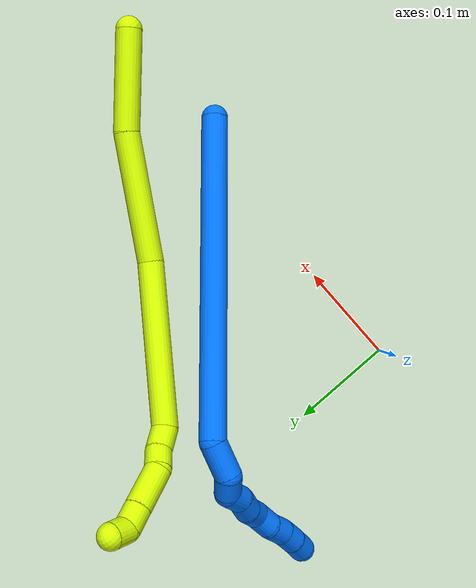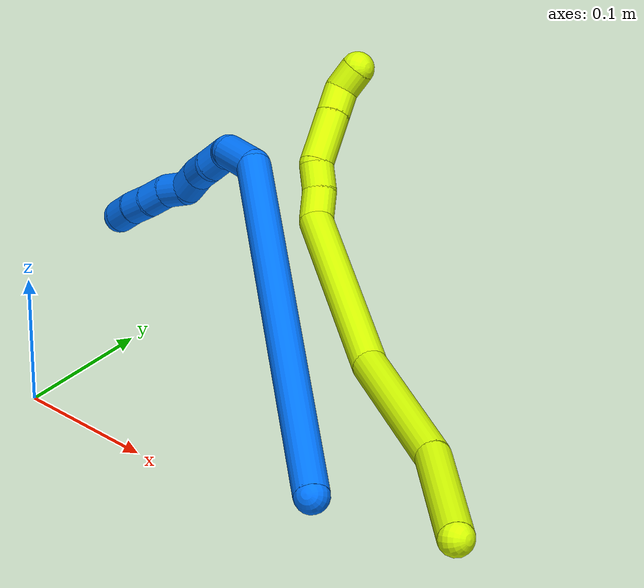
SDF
<sdf version="1.7">
 <world name="default">
  <model name="photoneo_s_sensor">
   <static>1</static>
   <pose>0 0 2 1.57079 1.57079 3.14159</pose>
   <link name="link">
    <inertial><mass>0.1</mass></inertial>
    <sensor name="sensor" type="depth">
     <update_rate>30</update_rate>
     <camera>
      <horizontal_fov>1.22</horizontal_fov>
      <image><width>1920</width><height>1200</height><format>B8G8R8</format></image>
      <clip><near>0.1</near><far>4</far></clip>
      <depth_camera><output>points</output></depth_camera>
     </camera>
     <plugin name="camera_plugin" filename="libgazebo_ros_depth_camera.so">
      <baseline>0.2</baseline>
      <alwaysOn>1</alwaysOn>
      <updateRate>0.0</updateRate>
      <cameraName>camera_ir</cameraName>
      <imageTopicName>/camera/color/image_raw</imageTopicName>
      <cameraInfoTopicName>/camera/color/camera_info</cameraInfoTopicName>
      <depthImageTopicName>/camera/depth/image_raw</depthImageTopicName>
      <depthImageCameraInfoTopicName>/camera/depth/camera_info</depthImageCameraInfoTopicName>
      <pointCloudTopicName>/camera/depth/points</pointCloudTopicName>
      <frameName>fr_optical</frameName>
      <pointCloudCutoff>0.1</pointCloudCutoff>
      <pointCloudCutoffMax>2.0</pointCloudCutoffMax>
      <distortionK1>0</distortionK1>
      <distortionK2>0</distortionK2>
      <distortionK3>0</distortionK3>
      <distortionT1>0</distortionT1>
      <distortionT2>0</distortionT2>
      <CxPrime>0</CxPrime>
      <Cx>0</Cx>
      <Cy>0</Cy>
      <focalLength>0</focalLength>
      <hackBaseline>0</hackBaseline>
     </plugin>
    </sensor>
   </link>
  </model>
  <model name="bin">
   <static>1</static>
   <link name="bottom">
    <collision name="collision-bottom">
     <pose>0 0 -0.01 0 -0 0</pose>
     <geometry><box><size>0.8 0.6 0.02</size></box></geometry>
     <surface>
      <friction><ode><mu>100</mu><mu2>100</mu2></ode></friction>
      <contact><collide_bitmask>65535</collide_bitmask></contact>
     </surface>
    </collision>
   </link>
   <link name="west_wall">
    <collision name="collision-west_wall">
     <pose>-0.41 0 0.1 0 -0 0</pose>
     <geometry><box><size>0.02 0.6 0.2</size></box></geometry>
     <surface>
      <friction><ode><mu>100</mu><mu2>100</mu2></ode></friction>
      <contact><collide_bitmask>65535</collide_bitmask></contact>
     </surface>
    </collision>
   </link>
   <link name="east_wall">
    <collision name="collision-east_wall">
     <pose>0.41 0 0.1 0 -0 0</pose>
     <geometry><box><size>0.02 0.6 0.2</size></box></geometry>
     <surface>
      <friction><ode><mu>100</mu><mu2>100</mu2></ode></friction>
      <contact><collide_bitmask>65535</collide_bitmask></contact>
     </surface>
    </collision>
   </link>
   <link name="south_wall">
    <collision name="collision-south_wall">
     <pose>0 -0.31 0.1 0 -0 0</pose>
     <geometry><box><size>0.8 0.02 0.2</size></box></geometry>
     <surface>
      <friction><ode><mu>100</mu><mu2>100</mu2></ode></friction>
      <contact><collide_bitmask>65535</collide_bitmask></contact>
     </surface>
    </collision>
   </link>
   <link name="north_wall">
    <collision name="collision-north_wall">
     <pose>0 0.31 0.1 0 -0 0</pose>
     <geometry><box><size>0.8 0.02 0.2</size></box></geometry>
     <surface>
      <friction><ode><mu>100</mu><mu2>100</mu2></ode></friction>
      <contact><collide_bitmask>65535</collide_bitmask></contact>
     </surface>
    </collision>
   </link>
  </model>
  <model name="14">
   <static>0</static>
   <link name="14">
    <collision name="collision-cylinder-e_1_1_4">
     <pose>-0.093183 0.095629 -0.073137 -2.2237 -0.658687 1.21026</pose>
     <geometry><cylinder><radius>0.0125</radius><length>0.30448</length></cylinder></geometry>
     <surface>
      <friction><ode><mu>1.16</mu><mu2>1.16</mu2><slip1>0</slip1><slip2>0</slip2></ode></friction>
      <contact><ode><kp>1e+06</kp><kd>1</kd><max_vel>0</max_vel><min_depth>0.001</min_depth></ode></contact>
     </surface>
    </collision>
    <visual name="visual-cylinder-e_1_1_4">
     <pose>-0.093183 0.095629 -0.073137 -2.2237 -0.658687 1.21026</pose>
     <geometry><cylinder><radius>0.0125</radius><length>0.30448</length></cylinder></geometry>
     <material><ambient>0 0.462745 1 1</ambient></material>
    </visual>
    <collision name="collision-cylinder-e_2_4_5">
     <pose>-0.20056 0.193053 -0.155523 -2.94993 -0.984807 2.78699</pose>
     <geometry><cylinder><radius>0.0125</radius><length>0.034071</length></cylinder></geometry>
     <surface>
      <friction><ode><mu>1.16</mu><mu2>1.16</mu2><slip1>0</slip1><slip2>0</slip2></ode></friction>
      <contact><ode><kp>1e+06</kp><kd>1</kd><max_vel>0</max_vel><min_depth>0.001</min_depth></ode></contact>
     </surface>
    </collision>
    <visual name="visual-cylinder-e_2_4_5">
     <pose>-0.20056 0.193053 -0.155523 -2.94993 -0.984807 2.78699</pose>
     <geometry><cylinder><radius>0.0125</radius><length>0.034071</length></cylinder></geometry>
     <material><ambient>0 0.462745 1 1</ambient></material>
    </visual>
    <collision name="collision-cylinder-e_3_5_6">
     <pose>-0.218933 0.194837 -0.174216 3.1405 -0.416678 -3.13643</pose>
     <geometry><cylinder><radius>0.0125</radius><length>0.020656</length></cylinder></geometry>
     <surface>
      <friction><ode><mu>1.16</mu><mu2>1.16</mu2><slip1>0</slip1><slip2>0</slip2></ode></friction>
      <contact><ode><kp>1e+06</kp><kd>1</kd><max_vel>0</max_vel><min_depth>0.001</min_depth></ode></contact>
     </surface>
    </collision>
    <visual name="visual-cylinder-e_3_5_6">
     <pose>-0.218933 0.194837 -0.174216 3.1405 -0.416678 -3.13643</pose>
     <geometry><cylinder><radius>0.0125</radius><length>0.020656</length></cylinder></geometry>
     <material><ambient>0 0.462745 1 1</ambient></material>
    </visual>
    <collision name="collision-cylinder-e_4_6_7">
     <pose>-0.228932 0.188581 -0.189019 2.27991 -0.615444 -1.20993</pose>
     <geometry><cylinder><radius>0.0125</radius><length>0.020159</length></cylinder></geometry>
     <surface>
      <friction><ode><mu>1.16</mu><mu2>1.16</mu2><slip1>0</slip1><slip2>0</slip2></ode></friction>
      <contact><ode><kp>1e+06</kp><kd>1</kd><max_vel>0</max_vel><min_depth>0.001</min_depth></ode></contact>
     </surface>
    </collision>
    <visual name="visual-cylinder-e_4_6_7">
     <pose>-0.228932 0.188581 -0.189019 2.27991 -0.615444 -1.20993</pose>
     <geometry><cylinder><radius>0.0125</radius><length>0.020159</length></cylinder></geometry>
     <material><ambient>0 0.462745 1 1</ambient></material>
    </visual>
    <collision name="collision-cylinder-e_5_7_8">
     <pose>-0.240347 0.178315 -0.201947 2.65336 -0.578461 -1.74775</pose>
     <geometry><cylinder><radius>0.0125</radius><length>0.020469</length></cylinder></geometry>
     <surface>
      <friction><ode><mu>1.16</mu><mu2>1.16</mu2><slip1>0</slip1><slip2>0</slip2></ode></friction>
      <contact><ode><kp>1e+06</kp><kd>1</kd><max_vel>0</max_vel><min_depth>0.001</min_depth></ode></contact>
     </surface>
    </collision>
    <visual name="visual-cylinder-e_5_7_8">
     <pose>-0.240347 0.178315 -0.201947 2.65336 -0.578461 -1.74775</pose>
     <geometry><cylinder><radius>0.0125</radius><length>0.020469</length></cylinder></geometry>
     <material><ambient>0 0.462745 1 1</ambient></material>
    </visual>
    <collision name="collision-cylinder-e_6_8_9">
     <pose>-0.250361 0.167944 -0.215941 2.36206 -0.454874 -1.02618</pose>
     <geometry><cylinder><radius>0.0125</radius><length>0.020116</length></cylinder></geometry>
     <surface>
      <friction><ode><mu>1.16</mu><mu2>1.16</mu2><slip1>0</slip1><slip2>0</slip2></ode></friction>
      <contact><ode><kp>1e+06</kp><kd>1</kd><max_vel>0</max_vel><min_depth>0.001</min_depth></ode></contact>
     </surface>
    </collision>
    <visual name="visual-cylinder-e_6_8_9">
     <pose>-0.250361 0.167944 -0.215941 2.36206 -0.454874 -1.02618</pose>
     <geometry><cylinder><radius>0.0125</radius><length>0.020116</length></cylinder></geometry>
     <material><ambient>0 0.462745 1 1</ambient></material>
    </visual>
    <collision name="collision-cylinder-e_7_9_10">
     <pose>-0.26305 0.158079 -0.226805 2.47181 -0.970557 -1.97497</pose>
     <geometry><cylinder><radius>0.0125</radius><length>0.020042</length></cylinder></geometry>
     <surface>
      <friction><ode><mu>1.16</mu><mu2>1.16</mu2><slip1>0</slip1><slip2>0</slip2></ode></friction>
      <contact><ode><kp>1e+06</kp><kd>1</kd><max_vel>0</max_vel><min_depth>0.001</min_depth></ode></contact>
     </surface>
    </collision>
    <visual name="visual-cylinder-e_7_9_10">
     <pose>-0.26305 0.158079 -0.226805 2.47181 -0.970557 -1.97497</pose>
     <geometry><cylinder><radius>0.0125</radius><length>0.020042</length></cylinder></geometry>
     <material><ambient>0 0.462745 1 1</ambient></material>
    </visual>
    <collision name="collision-cylinder-e_8_10_11">
     <pose>-0.277979 0.14875 -0.23592 2.24827 -0.728576 -1.34476</pose>
     <geometry><cylinder><radius>0.0125</radius><length>0.020005</length></cylinder></geometry>
     <surface>
      <friction><ode><mu>1.16</mu><mu2>1.16</mu2><slip1>0</slip1><slip2>0</slip2></ode></friction>
      <contact><ode><kp>1e+06</kp><kd>1</kd><max_vel>0</max_vel><min_depth>0.001</min_depth></ode></contact>
     </surface>
    </collision>
    <visual name="visual-cylinder-e_8_10_11">
     <pose>-0.277979 0.14875 -0.23592 2.24827 -0.728576 -1.34476</pose>
     <geometry><cylinder><radius>0.0125</radius><length>0.020005</length></cylinder></geometry>
     <material><ambient>0 0.462745 1 1</ambient></material>
    </visual>
    <collision name="collision-cylinder-e_9_11_12">
     <pose>-0.291538 0.138266 -0.24613 2.44056 -0.761385 -1.6611</pose>
     <geometry><cylinder><radius>0.0125</radius><length>0.020001</length></cylinder></geometry>
     <surface>
      <friction><ode><mu>1.16</mu><mu2>1.16</mu2><slip1>0</slip1><slip2>0</slip2></ode></friction>
      <contact><ode><kp>1e+06</kp><kd>1</kd><max_vel>0</max_vel><min_depth>0.001</min_depth></ode></contact>
     </surface>
    </collision>
    <visual name="visual-cylinder-e_9_11_12">
     <pose>-0.291538 0.138266 -0.24613 2.44056 -0.761385 -1.6611</pose>
     <geometry><cylinder><radius>0.0125</radius><length>0.020001</length></cylinder></geometry>
     <material><ambient>0 0.462745 1 1</ambient></material>
    </visual>
    <collision name="collision-cylinder-e_10_12_2">
     <pose>-0.30449 0.128901 -0.258091 2.51075 -0.649997 -1.60285</pose>
     <geometry><cylinder><radius>0.0125</radius><length>0.02</length></cylinder></geometry>
     <surface>
      <friction><ode><mu>1.16</mu><mu2>1.16</mu2><slip1>0</slip1><slip2>0</slip2></ode></friction>
      <contact><ode><kp>1e+06</kp><kd>1</kd><max_vel>0</max_vel><min_depth>0.001</min_depth></ode></contact>
     </surface>
    </collision>
    <visual name="visual-cylinder-e_10_12_2">
     <pose>-0.30449 0.128901 -0.258091 2.51075 -0.649997 -1.60285</pose>
     <geometry><cylinder><radius>0.0125</radius><length>0.02</length></cylinder></geometry>
     <material><ambient>0 0.462745 1 1</ambient></material>
    </visual>
    <collision name="collision-sphere-2">
     <pose>-0.310542 0.124205 -0.26452 0 -0 0</pose>
     <geometry><sphere><radius>0.0125</radius></sphere></geometry>
     <surface>
      <friction><ode><mu>1.16</mu><mu2>1.16</mu2><slip1>0</slip1><slip2>0</slip2></ode></friction>
      <contact><ode><kp>1e+06</kp><kd>1</kd><max_vel>0</max_vel><min_depth>0.001</min_depth></ode></contact>
     </surface>
    </collision>
    <visual name="visual-sphere-2">
     <pose>-0.310542 0.124205 -0.26452 0 -0 0</pose>
     <geometry><sphere><radius>0.0125</radius></sphere></geometry>
     <material><ambient>0 0.462745 1 1</ambient></material>
    </visual>
    <collision name="collision-sphere-12">
     <pose>-0.298438 0.133596 -0.251662 0 -0 0</pose>
     <geometry><sphere><radius>0.0125</radius></sphere></geometry>
     <surface>
      <friction><ode><mu>1.16</mu><mu2>1.16</mu2><slip1>0</slip1><slip2>0</slip2></ode></friction>
      <contact><ode><kp>1e+06</kp><kd>1</kd><max_vel>0</max_vel><min_depth>0.001</min_depth></ode></contact>
     </surface>
    </collision>
    <visual name="visual-sphere-12">
     <pose>-0.298438 0.133596 -0.251662 0 -0 0</pose>
     <geometry><sphere><radius>0.0125</radius></sphere></geometry>
     <material><ambient>0 0.462745 1 1</ambient></material>
    </visual>
    <collision name="collision-sphere-11">
     <pose>-0.284639 0.142935 -0.240598 0 -0 0</pose>
     <geometry><sphere><radius>0.0125</radius></sphere></geometry>
     <surface>
      <friction><ode><mu>1.16</mu><mu2>1.16</mu2><slip1>0</slip1><slip2>0</slip2></ode></friction>
      <contact><ode><kp>1e+06</kp><kd>1</kd><max_vel>0</max_vel><min_depth>0.001</min_depth></ode></contact>
     </surface>
    </collision>
    <visual name="visual-sphere-11">
     <pose>-0.284639 0.142935 -0.240598 0 -0 0</pose>
     <geometry><sphere><radius>0.0125</radius></sphere></geometry>
     <material><ambient>0 0.462745 1 1</ambient></material>
    </visual>
    <collision name="collision-sphere-10">
     <pose>-0.271319 0.154565 -0.231242 0 -0 0</pose>
     <geometry><sphere><radius>0.0125</radius></sphere></geometry>
     <surface>
      <friction><ode><mu>1.16</mu><mu2>1.16</mu2><slip1>0</slip1><slip2>0</slip2></ode></friction>
      <contact><ode><kp>1e+06</kp><kd>1</kd><max_vel>0</max_vel><min_depth>0.001</min_depth></ode></contact>
     </surface>
    </collision>
    <visual name="visual-sphere-10">
     <pose>-0.271319 0.154565 -0.231242 0 -0 0</pose>
     <geometry><sphere><radius>0.0125</radius></sphere></geometry>
     <material><ambient>0 0.462745 1 1</ambient></material>
    </visual>
    <collision name="collision-sphere-9">
     <pose>-0.25478 0.161593 -0.222367 0 -0 0</pose>
     <geometry><sphere><radius>0.0125</radius></sphere></geometry>
     <surface>
      <friction><ode><mu>1.16</mu><mu2>1.16</mu2><slip1>0</slip1><slip2>0</slip2></ode></friction>
      <contact><ode><kp>1e+06</kp><kd>1</kd><max_vel>0</max_vel><min_depth>0.001</min_depth></ode></contact>
     </surface>
    </collision>
    <visual name="visual-sphere-9">
     <pose>-0.25478 0.161593 -0.222367 0 -0 0</pose>
     <geometry><sphere><radius>0.0125</radius></sphere></geometry>
     <material><ambient>0 0.462745 1 1</ambient></material>
    </visual>
    <collision name="collision-sphere-4">
     <pose>-0.186366 0.191258 -0.146274 0 -0 0</pose>
     <geometry><sphere><radius>0.0125</radius></sphere></geometry>
     <surface>
      <friction><ode><mu>1.16</mu><mu2>1.16</mu2><slip1>0</slip1><slip2>0</slip2></ode></friction>
      <contact><ode><kp>1e+06</kp><kd>1</kd><max_vel>0</max_vel><min_depth>0.001</min_depth></ode></contact>
     </surface>
    </collision>
    <visual name="visual-sphere-4">
     <pose>-0.186366 0.191258 -0.146274 0 -0 0</pose>
     <geometry><sphere><radius>0.0125</radius></sphere></geometry>
     <material><ambient>0 0.462745 1 1</ambient></material>
    </visual>
    <collision name="collision-sphere-1">
     <geometry><sphere><radius>0.0125</radius></sphere></geometry>
     <surface>
      <friction><ode><mu>1.16</mu><mu2>1.16</mu2><slip1>0</slip1><slip2>0</slip2></ode></friction>
      <contact><ode><kp>1e+06</kp><kd>1</kd><max_vel>0</max_vel><min_depth>0.001</min_depth></ode></contact>
     </surface>
    </collision>
    <visual name="visual-sphere-1">
     <geometry><sphere><radius>0.0125</radius></sphere></geometry>
     <material><ambient>0 0.462745 1 1</ambient></material>
    </visual>
    <collision name="collision-sphere-8">
     <pose>-0.245942 0.174296 -0.209515 0 -0 0</pose>
     <geometry><sphere><radius>0.0125</radius></sphere></geometry>
     <surface>
      <friction><ode><mu>1.16</mu><mu2>1.16</mu2><slip1>0</slip1><slip2>0</slip2></ode></friction>
      <contact><ode><kp>1e+06</kp><kd>1</kd><max_vel>0</max_vel><min_depth>0.001</min_depth></ode></contact>
     </surface>
    </collision>
    <visual name="visual-sphere-8">
     <pose>-0.245942 0.174296 -0.209515 0 -0 0</pose>
     <geometry><sphere><radius>0.0125</radius></sphere></geometry>
     <material><ambient>0 0.462745 1 1</ambient></material>
    </visual>
    <collision name="collision-sphere-5">
     <pose>-0.214753 0.194848 -0.164772 0 -0 0</pose>
     <geometry><sphere><radius>0.0125</radius></sphere></geometry>
     <surface>
      <friction><ode><mu>1.16</mu><mu2>1.16</mu2><slip1>0</slip1><slip2>0</slip2></ode></friction>
      <contact><ode><kp>1e+06</kp><kd>1</kd><max_vel>0</max_vel><min_depth>0.001</min_depth></ode></contact>
     </surface>
    </collision>
    <visual name="visual-sphere-5">
     <pose>-0.214753 0.194848 -0.164772 0 -0 0</pose>
     <geometry><sphere><radius>0.0125</radius></sphere></geometry>
     <material><ambient>0 0.462745 1 1</ambient></material>
    </visual>
    <collision name="collision-sphere-6">
     <pose>-0.223113 0.194827 -0.18366 0 -0 0</pose>
     <geometry><sphere><radius>0.0125</radius></sphere></geometry>
     <surface>
      <friction><ode><mu>1.16</mu><mu2>1.16</mu2><slip1>0</slip1><slip2>0</slip2></ode></friction>
      <contact><ode><kp>1e+06</kp><kd>1</kd><max_vel>0</max_vel><min_depth>0.001</min_depth></ode></contact>
     </surface>
    </collision>
    <visual name="visual-sphere-6">
     <pose>-0.223113 0.194827 -0.18366 0 -0 0</pose>
     <geometry><sphere><radius>0.0125</radius></sphere></geometry>
     <material><ambient>0 0.462745 1 1</ambient></material>
    </visual>
    <collision name="collision-sphere-7">
     <pose>-0.234751 0.182335 -0.194378 0 -0 0</pose>
     <geometry><sphere><radius>0.0125</radius></sphere></geometry>
     <surface>
      <friction><ode><mu>1.16</mu><mu2>1.16</mu2><slip1>0</slip1><slip2>0</slip2></ode></friction>
      <contact><ode><kp>1e+06</kp><kd>1</kd><max_vel>0</max_vel><min_depth>0.001</min_depth></ode></contact>
     </surface>
    </collision>
    <visual name="visual-sphere-7">
     <pose>-0.234751 0.182335 -0.194378 0 -0 0</pose>
     <geometry><sphere><radius>0.0125</radius></sphere></geometry>
     <material><ambient>0 0.462745 1 1</ambient></material>
    </visual>
    <inertial>
     <pose>-0.154106 0.124073 -0.125609 0 -0 0</pose>
     <mass>0.5</mass>
     <inertia>
      <ixx>0.002375</ixx>
      <ixy>0</ixy>
      <ixz>0</ixz>
      <iyy>0.002331</iyy>
      <iyz>0</iyz>
      <izz>-4.3e-05</izz>
     </inertia>
    </inertial>
   </link>
   <pose>0.276574 -0.022037 0.06392 0.839012 0.145344 0.203864</pose>
  </model>
  <model name="15">
   <static>0</static>
   <link name="15">
    <collision name="collision-cylinder-e_1_1_4">
     <pose>0.001733 0.032247 -0.034784 -2.39401 0.036518 -0.093046</pose>
     <geometry><cylinder><radius>0.0125</radius><length>0.094927</length></cylinder></geometry>
     <surface>
      <friction><ode><mu>1.16</mu><mu2>1.16</mu2><slip1>0</slip1><slip2>0</slip2></ode></friction>
      <contact><ode><kp>1e+06</kp><kd>1</kd><max_vel>0</max_vel><min_depth>0.001</min_depth></ode></contact>
     </surface>
    </collision>
    <visual name="visual-cylinder-e_1_1_4">
     <pose>0.001733 0.032247 -0.034784 -2.39401 0.036518 -0.093046</pose>
     <geometry><cylinder><radius>0.0125</radius><length>0.094927</length></cylinder></geometry>
     <material><ambient>0.835294 1 0 1</ambient></material>
    </visual>
    <collision name="collision-cylinder-e_2_4_5">
     <pose>-0.000424 0.097396 -0.121403 -2.57604 -0.063268 0.216958</pose>
     <geometry><cylinder><radius>0.0125</radius><length>0.123038</length></cylinder></geometry>
     <surface>
      <friction><ode><mu>1.16</mu><mu2>1.16</mu2><slip1>0</slip1><slip2>0</slip2></ode></friction>
      <contact><ode><kp>1e+06</kp><kd>1</kd><max_vel>0</max_vel><min_depth>0.001</min_depth></ode></contact>
     </surface>
    </collision>
    <visual name="visual-cylinder-e_2_4_5">
     <pose>-0.000424 0.097396 -0.121403 -2.57604 -0.063268 0.216958</pose>
     <geometry><cylinder><radius>0.0125</radius><length>0.123038</length></cylinder></geometry>
     <material><ambient>0.835294 1 0 1</ambient></material>
    </visual>
    <collision name="collision-cylinder-e_3_5_6">
     <pose>-0.020174 0.182049 -0.229334 -2.39644 -0.204893 0.514442</pose>
     <geometry><cylinder><radius>0.0125</radius><length>0.155903</length></cylinder></geometry>
     <surface>
      <friction><ode><mu>1.16</mu><mu2>1.16</mu2><slip1>0</slip1><slip2>0</slip2></ode></friction>
      <contact><ode><kp>1e+06</kp><kd>1</kd><max_vel>0</max_vel><min_depth>0.001</min_depth></ode></contact>
     </surface>
    </collision>
    <visual name="visual-cylinder-e_3_5_6">
     <pose>-0.020174 0.182049 -0.229334 -2.39644 -0.204893 0.514442</pose>
     <geometry><cylinder><radius>0.0125</radius><length>0.155903</length></cylinder></geometry>
     <material><ambient>0.835294 1 0 1</ambient></material>
    </visual>
    <collision name="collision-cylinder-e_4_6_7">
     <pose>-0.041128 0.244127 -0.288146 -1.82806 -0.44515 0.571097</pose>
     <geometry><cylinder><radius>0.0125</radius><length>0.023661</length></cylinder></geometry>
     <surface>
      <friction><ode><mu>1.16</mu><mu2>1.16</mu2><slip1>0</slip1><slip2>0</slip2></ode></friction>
      <contact><ode><kp>1e+06</kp><kd>1</kd><max_vel>0</max_vel><min_depth>0.001</min_depth></ode></contact>
     </surface>
    </collision>
    <visual name="visual-cylinder-e_4_6_7">
     <pose>-0.041128 0.244127 -0.288146 -1.82806 -0.44515 0.571097</pose>
     <geometry><cylinder><radius>0.0125</radius><length>0.023661</length></cylinder></geometry>
     <material><ambient>0.835294 1 0 1</ambient></material>
    </visual>
    <collision name="collision-cylinder-e_5_7_8">
     <pose>-0.052617 0.261762 -0.293717 -1.94315 -0.683857 0.960765</pose>
     <geometry><cylinder><radius>0.0125</radius><length>0.020244</length></cylinder></geometry>
     <surface>
      <friction><ode><mu>1.16</mu><mu2>1.16</mu2><slip1>0</slip1><slip2>0</slip2></ode></friction>
      <contact><ode><kp>1e+06</kp><kd>1</kd><max_vel>0</max_vel><min_depth>0.001</min_depth></ode></contact>
     </surface>
    </collision>
    <visual name="visual-cylinder-e_5_7_8">
     <pose>-0.052617 0.261762 -0.293717 -1.94315 -0.683857 0.960765</pose>
     <geometry><cylinder><radius>0.0125</radius><length>0.020244</length></cylinder></geometry>
     <material><ambient>0.835294 1 0 1</ambient></material>
    </visual>
    <collision name="collision-cylinder-e_6_8_9">
     <pose>-0.065104 0.288333 -0.298624 -1.67694 -0.304659 0.338228</pose>
     <geometry><cylinder><radius>0.0125</radius><length>0.040616</length></cylinder></geometry>
     <surface>
      <friction><ode><mu>1.16</mu><mu2>1.16</mu2><slip1>0</slip1><slip2>0</slip2></ode></friction>
      <contact><ode><kp>1e+06</kp><kd>1</kd><max_vel>0</max_vel><min_depth>0.001</min_depth></ode></contact>
     </surface>
    </collision>
    <visual name="visual-cylinder-e_6_8_9">
     <pose>-0.065104 0.288333 -0.298624 -1.67694 -0.304659 0.338228</pose>
     <geometry><cylinder><radius>0.0125</radius><length>0.040616</length></cylinder></geometry>
     <material><ambient>0.835294 1 0 1</ambient></material>
    </visual>
    <collision name="collision-cylinder-e_7_9_10">
     <pose>-0.074343 0.317863 -0.30185 -1.68461 -0.295708 0.33082</pose>
     <geometry><cylinder><radius>0.0125</radius><length>0.021603</length></cylinder></geometry>
     <surface>
      <friction><ode><mu>1.16</mu><mu2>1.16</mu2><slip1>0</slip1><slip2>0</slip2></ode></friction>
      <contact><ode><kp>1e+06</kp><kd>1</kd><max_vel>0</max_vel><min_depth>0.001</min_depth></ode></contact>
     </surface>
    </collision>
    <visual name="visual-cylinder-e_7_9_10">
     <pose>-0.074343 0.317863 -0.30185 -1.68461 -0.295708 0.33082</pose>
     <geometry><cylinder><radius>0.0125</radius><length>0.021603</length></cylinder></geometry>
     <material><ambient>0.835294 1 0 1</ambient></material>
    </visual>
    <collision name="collision-cylinder-e_8_10_2">
     <pose>-0.081289 0.335588 -0.297545 -0.937293 -0.389443 0.199032</pose>
     <geometry><cylinder><radius>0.0125</radius><length>0.020008</length></cylinder></geometry>
     <surface>
      <friction><ode><mu>1.16</mu><mu2>1.16</mu2><slip1>0</slip1><slip2>0</slip2></ode></friction>
      <contact><ode><kp>1e+06</kp><kd>1</kd><max_vel>0</max_vel><min_depth>0.001</min_depth></ode></contact>
     </surface>
    </collision>
    <visual name="visual-cylinder-e_8_10_2">
     <pose>-0.081289 0.335588 -0.297545 -0.937293 -0.389443 0.199032</pose>
     <geometry><cylinder><radius>0.0125</radius><length>0.020008</length></cylinder></geometry>
     <material><ambient>0.835294 1 0 1</ambient></material>
    </visual>
    <collision name="collision-sphere-2">
     <pose>-0.085087 0.343047 -0.292066 0 -0 0</pose>
     <geometry><sphere><radius>0.0125</radius></sphere></geometry>
     <surface>
      <friction><ode><mu>1.16</mu><mu2>1.16</mu2><slip1>0</slip1><slip2>0</slip2></ode></friction>
      <contact><ode><kp>1e+06</kp><kd>1</kd><max_vel>0</max_vel><min_depth>0.001</min_depth></ode></contact>
     </surface>
    </collision>
    <visual name="visual-sphere-2">
     <pose>-0.085087 0.343047 -0.292066 0 -0 0</pose>
     <geometry><sphere><radius>0.0125</radius></sphere></geometry>
     <material><ambient>0.835294 1 0 1</ambient></material>
    </visual>
    <collision name="collision-sphere-10">
     <pose>-0.077491 0.328129 -0.303023 0 -0 0</pose>
     <geometry><sphere><radius>0.0125</radius></sphere></geometry>
     <surface>
      <friction><ode><mu>1.16</mu><mu2>1.16</mu2><slip1>0</slip1><slip2>0</slip2></ode></friction>
      <contact><ode><kp>1e+06</kp><kd>1</kd><max_vel>0</max_vel><min_depth>0.001</min_depth></ode></contact>
     </surface>
    </collision>
    <visual name="visual-sphere-10">
     <pose>-0.077491 0.328129 -0.303023 0 -0 0</pose>
     <geometry><sphere><radius>0.0125</radius></sphere></geometry>
     <material><ambient>0.835294 1 0 1</ambient></material>
    </visual>
    <collision name="collision-sphere-9">
     <pose>-0.071195 0.307597 -0.300676 0 -0 0</pose>
     <geometry><sphere><radius>0.0125</radius></sphere></geometry>
     <surface>
      <friction><ode><mu>1.16</mu><mu2>1.16</mu2><slip1>0</slip1><slip2>0</slip2></ode></friction>
      <contact><ode><kp>1e+06</kp><kd>1</kd><max_vel>0</max_vel><min_depth>0.001</min_depth></ode></contact>
     </surface>
    </collision>
    <visual name="visual-sphere-9">
     <pose>-0.071195 0.307597 -0.300676 0 -0 0</pose>
     <geometry><sphere><radius>0.0125</radius></sphere></geometry>
     <material><ambient>0.835294 1 0 1</ambient></material>
    </visual>
    <collision name="collision-sphere-4">
     <pose>0.003466 0.064495 -0.069567 0 -0 0</pose>
     <geometry><sphere><radius>0.0125</radius></sphere></geometry>
     <surface>
      <friction><ode><mu>1.16</mu><mu2>1.16</mu2><slip1>0</slip1><slip2>0</slip2></ode></friction>
      <contact><ode><kp>1e+06</kp><kd>1</kd><max_vel>0</max_vel><min_depth>0.001</min_depth></ode></contact>
     </surface>
    </collision>
    <visual name="visual-sphere-4">
     <pose>0.003466 0.064495 -0.069567 0 -0 0</pose>
     <geometry><sphere><radius>0.0125</radius></sphere></geometry>
     <material><ambient>0.835294 1 0 1</ambient></material>
    </visual>
    <collision name="collision-sphere-1">
     <geometry><sphere><radius>0.0125</radius></sphere></geometry>
     <surface>
      <friction><ode><mu>1.16</mu><mu2>1.16</mu2><slip1>0</slip1><slip2>0</slip2></ode></friction>
      <contact><ode><kp>1e+06</kp><kd>1</kd><max_vel>0</max_vel><min_depth>0.001</min_depth></ode></contact>
     </surface>
    </collision>
    <visual name="visual-sphere-1">
     <geometry><sphere><radius>0.0125</radius></sphere></geometry>
     <material><ambient>0.835294 1 0 1</ambient></material>
    </visual>
    <collision name="collision-sphere-8">
     <pose>-0.059012 0.26907 -0.296571 0 -0 0</pose>
     <geometry><sphere><radius>0.0125</radius></sphere></geometry>
     <surface>
      <friction><ode><mu>1.16</mu><mu2>1.16</mu2><slip1>0</slip1><slip2>0</slip2></ode></friction>
      <contact><ode><kp>1e+06</kp><kd>1</kd><max_vel>0</max_vel><min_depth>0.001</min_depth></ode></contact>
     </surface>
    </collision>
    <visual name="visual-sphere-8">
     <pose>-0.059012 0.26907 -0.296571 0 -0 0</pose>
     <geometry><sphere><radius>0.0125</radius></sphere></geometry>
     <material><ambient>0.835294 1 0 1</ambient></material>
    </visual>
    <collision name="collision-sphere-5">
     <pose>-0.004313 0.130297 -0.173239 0 -0 0</pose>
     <geometry><sphere><radius>0.0125</radius></sphere></geometry>
     <surface>
      <friction><ode><mu>1.16</mu><mu2>1.16</mu2><slip1>0</slip1><slip2>0</slip2></ode></friction>
      <contact><ode><kp>1e+06</kp><kd>1</kd><max_vel>0</max_vel><min_depth>0.001</min_depth></ode></contact>
     </surface>
    </collision>
    <visual name="visual-sphere-5">
     <pose>-0.004313 0.130297 -0.173239 0 -0 0</pose>
     <geometry><sphere><radius>0.0125</radius></sphere></geometry>
     <material><ambient>0.835294 1 0 1</ambient></material>
    </visual>
    <collision name="collision-sphere-6">
     <pose>-0.036034 0.233801 -0.285429 0 -0 0</pose>
     <geometry><sphere><radius>0.0125</radius></sphere></geometry>
     <surface>
      <friction><ode><mu>1.16</mu><mu2>1.16</mu2><slip1>0</slip1><slip2>0</slip2></ode></friction>
      <contact><ode><kp>1e+06</kp><kd>1</kd><max_vel>0</max_vel><min_depth>0.001</min_depth></ode></contact>
     </surface>
    </collision>
    <visual name="visual-sphere-6">
     <pose>-0.036034 0.233801 -0.285429 0 -0 0</pose>
     <geometry><sphere><radius>0.0125</radius></sphere></geometry>
     <material><ambient>0.835294 1 0 1</ambient></material>
    </visual>
    <collision name="collision-sphere-7">
     <pose>-0.046222 0.254453 -0.290863 0 -0 0</pose>
     <geometry><sphere><radius>0.0125</radius></sphere></geometry>
     <surface>
      <friction><ode><mu>1.16</mu><mu2>1.16</mu2><slip1>0</slip1><slip2>0</slip2></ode></friction>
      <contact><ode><kp>1e+06</kp><kd>1</kd><max_vel>0</max_vel><min_depth>0.001</min_depth></ode></contact>
     </surface>
    </collision>
    <visual name="visual-sphere-7">
     <pose>-0.046222 0.254453 -0.290863 0 -0 0</pose>
     <geometry><sphere><radius>0.0125</radius></sphere></geometry>
     <material><ambient>0.835294 1 0 1</ambient></material>
    </visual>
    <inertial>
     <pose>-0.021896 0.159588 -0.18272 0 -0 0</pose>
     <mass>0.5</mass>
     <inertia>
      <ixx>0.000697</ixx>
      <ixy>0</ixy>
      <ixz>0</ixz>
      <iyy>-0.000154</iyy>
      <iyz>0</iyz>
      <izz>-0.000307</izz>
     </inertia>
    </inertial>
   </link>
   <pose>0.388376 -0.0143 0.082291 0.746855 1.04711 0.776331</pose>
  </model>
 </world>
</sdf>
